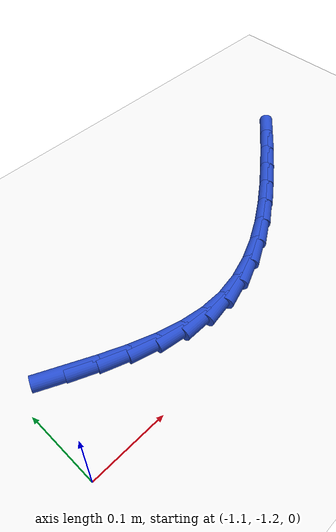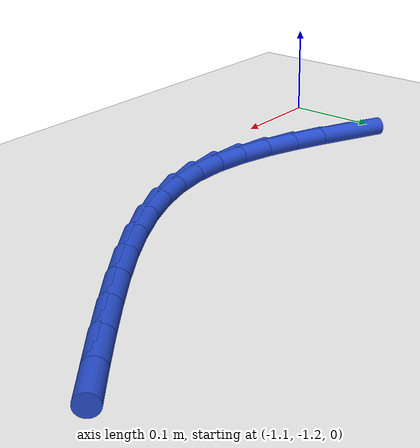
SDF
<sdf version="1.6">
 <world name="default">
  <model name="ground_plane">
   <static>1</static>
   <link name="link">
    <collision name="collision">
     <geometry><plane><normal>0 0 1</normal><size>100 100</size></plane></geometry>
     <surface><friction><ode><mu>100</mu><mu2>50</mu2></ode></friction></surface>
    </collision>
    <visual name="visual">
     <cast_shadows>0</cast_shadows>
     <geometry><plane><normal>0 0 1</normal><size>100 100</size></plane></geometry>
     <material>
      <script><uri>file://media/materials/scripts/gazebo.material</uri><name>Gazebo/WhiteGlow</name></script>
     </material>
    </visual>
   </link>
  </model>
  <model name="line">
   <link name="link_143">
    <pose>-1.0437314671801652 -1.0893300195327604 0.01 0 1.57 -0.4500691885193759</pose>
    <collision name="collision">
     <geometry><cylinder><radius>0.01</radius><length>0.08</length></cylinder></geometry>
    </collision>
    <visual name="visual">
     <material>
      <script><name>Gazebo/Blue</name><uri>file://media/materials/scripts/gazebo.material</uri></script>
     </material>
     <geometry><cylinder><radius>0.01</radius><length>0.08</length></cylinder></geometry>
    </visual>
   </link>
   <link name="link_144">
    <pose>-1.0095915316492452 -1.1058244016954004 0.01 0 1.57 -0.4147867487717466</pose>
    <collision name="collision">
     <geometry><cylinder><radius>0.01</radius><length>0.08</length></cylinder></geometry>
    </collision>
    <visual name="visual">
     <material>
      <script><name>Gazebo/Blue</name><uri>file://media/materials/scripts/gazebo.material</uri></script>
     </material>
     <geometry><cylinder><radius>0.01</radius><length>0.08</length></cylinder></geometry>
    </visual>
   </link>
   <link name="link_145">
    <pose>-0.9756408285454082 -1.1207740539563924 0.01 0 1.57 -0.35506364588897443</pose>
    <collision name="collision">
     <geometry><cylinder><radius>0.01</radius><length>0.08</length></cylinder></geometry>
    </collision>
    <visual name="visual">
     <material>
      <script><name>Gazebo/Blue</name><uri>file://media/materials/scripts/gazebo.material</uri></script>
     </material>
     <geometry><cylinder><radius>0.01</radius><length>0.08</length></cylinder></geometry>
    </visual>
   </link>
   <link name="link_146">
    <pose>-0.9418515716487137 -1.1333023510264435 0.01 0 1.57 -0.26767624566615017</pose>
    <collision name="collision">
     <geometry><cylinder><radius>0.01</radius><length>0.08</length></cylinder></geometry>
    </collision>
    <visual name="visual">
     <material>
      <script><name>Gazebo/Blue</name><uri>file://media/materials/scripts/gazebo.material</uri></script>
     </material>
     <geometry><cylinder><radius>0.01</radius><length>0.08</length></cylinder></geometry>
    </visual>
   </link>
   <link name="link_147">
    <pose>-0.9081959747392231 -1.1425326676162602 0.01 0 1.57 -0.14956769890173596</pose>
    <collision name="collision">
     <geometry><cylinder><radius>0.01</radius><length>0.08</length></cylinder></geometry>
    </collision>
    <visual name="visual">
     <material>
      <script><name>Gazebo/Blue</name><uri>file://media/materials/scripts/gazebo.material</uri></script>
     </material>
     <geometry><cylinder><radius>0.01</radius><length>0.08</length></cylinder></geometry>
    </visual>
   </link>
   <link name="link_148">
    <pose>-0.8746462515969972 -1.1475883784365495 0.01 0 1.57 -0.00017499034555581747</pose>
    <collision name="collision">
     <geometry><cylinder><radius>0.01</radius><length>0.08</length></cylinder></geometry>
    </collision>
    <visual name="visual">
     <material>
      <script><name>Gazebo/Blue</name><uri>file://media/materials/scripts/gazebo.material</uri></script>
     </material>
     <geometry><cylinder><radius>0.01</radius><length>0.08</length></cylinder></geometry>
    </visual>
   </link>
   <link name="link_149">
    <pose>-0.8411747187085692 -1.1475942356317157 0.01 0 1.57 0.16299693353481376</pose>
    <collision name="collision">
     <geometry><cylinder><radius>0.01</radius><length>0.08</length></cylinder></geometry>
    </collision>
    <visual name="visual">
     <material>
      <script><name>Gazebo/Blue</name><uri>file://media/materials/scripts/gazebo.material</uri></script>
     </material>
     <geometry><cylinder><radius>0.01</radius><length>0.08</length></cylinder></geometry>
    </visual>
   </link>
   <link name="link_150">
    <pose>-0.8077856213712263 -1.1421032001922433 0.01 0 1.57 0.3034077067660393</pose>
    <collision name="collision">
     <geometry><cylinder><radius>0.01</radius><length>0.08</length></cylinder></geometry>
    </collision>
    <visual name="visual">
     <material>
      <script><name>Gazebo/Blue</name><uri>file://media/materials/scripts/gazebo.material</uri></script>
     </material>
     <geometry><cylinder><radius>0.01</radius><length>0.08</length></cylinder></geometry>
    </visual>
   </link>
   <link name="link_151">
    <pose>-0.7745602261416399 -1.1317011931163743 0.01 0 1.57 0.4162345979605556</pose>
    <collision name="collision">
     <geometry><cylinder><radius>0.01</radius><length>0.08</length></cylinder></geometry>
    </collision>
    <visual name="visual">
     <material>
      <script><name>Gazebo/Blue</name><uri>file://media/materials/scripts/gazebo.material</uri></script>
     </material>
     <geometry><cylinder><radius>0.01</radius><length>0.08</length></cylinder></geometry>
    </visual>
   </link>
   <link name="link_152">
    <pose>-0.741591180734068 -1.1171267722291456 0.01 0 1.57 0.5044246599722264</pose>
    <collision name="collision">
     <geometry><cylinder><radius>0.01</radius><length>0.08</length></cylinder></geometry>
    </collision>
    <visual name="visual">
     <material>
      <script><name>Gazebo/Blue</name><uri>file://media/materials/scripts/gazebo.material</uri></script>
     </material>
     <geometry><cylinder><radius>0.01</radius><length>0.08</length></cylinder></geometry>
    </visual>
   </link>
   <link name="link_153">
    <pose>-0.7089711328627667 -1.0991184953555937 0.01 0 1.57 0.5717212980597471</pose>
    <collision name="collision">
     <geometry><cylinder><radius>0.01</radius><length>0.08</length></cylinder></geometry>
    </collision>
    <visual name="visual">
     <material>
      <script><name>Gazebo/Blue</name><uri>file://media/materials/scripts/gazebo.material</uri></script>
     </material>
     <geometry><cylinder><radius>0.01</radius><length>0.08</length></cylinder></geometry>
    </visual>
   </link>
   <link name="link_154">
    <pose>-0.6767927302419945 -1.0784149203207554 0.01 0 1.57 0.6214491476171118</pose>
    <collision name="collision">
     <geometry><cylinder><radius>0.01</radius><length>0.08</length></cylinder></geometry>
    </collision>
    <visual name="visual">
     <material>
      <script><name>Gazebo/Blue</name><uri>file://media/materials/scripts/gazebo.material</uri></script>
     </material>
     <geometry><cylinder><radius>0.01</radius><length>0.08</length></cylinder></geometry>
    </visual>
   </link>
   <link name="link_155">
    <pose>-0.6451486205860082 -1.0557546049496673 0.01 0 1.57 0.6560831332819782</pose>
    <collision name="collision">
     <geometry><cylinder><radius>0.01</radius><length>0.08</length></cylinder></geometry>
    </collision>
    <visual name="visual">
     <material>
      <script><name>Gazebo/Blue</name><uri>file://media/materials/scripts/gazebo.material</uri></script>
     </material>
     <geometry><cylinder><radius>0.01</radius><length>0.08</length></cylinder></geometry>
    </visual>
   </link>
   <link name="link_156">
    <pose>-0.6141314516090658 -1.0318761070673663 0.01 0 1.57 0.6773886422893551</pose>
    <collision name="collision">
     <geometry><cylinder><radius>0.01</radius><length>0.08</length></cylinder></geometry>
    </collision>
    <visual name="visual">
     <material>
      <script><name>Gazebo/Blue</name><uri>file://media/materials/scripts/gazebo.material</uri></script>
     </material>
     <geometry><cylinder><radius>0.01</radius><length>0.08</length></cylinder></geometry>
    </visual>
   </link>
   <link name="link_157">
    <pose>-0.5838319137436297 -1.0075046296887133 0.01 0 1.57 0.6922249080107392</pose>
    <collision name="collision">
     <geometry><cylinder><radius>0.01</radius><length>0.08</length></cylinder></geometry>
    </collision>
    <visual name="visual">
     <material>
      <script><name>Gazebo/Blue</name><uri>file://media/materials/scripts/gazebo.material</uri></script>
     </material>
     <geometry><cylinder><radius>0.01</radius><length>0.08</length></cylinder></geometry>
    </visual>
   </link>
   <link name="link_158">
    <pose>-0.5542887416516084 -0.9830108742666152 0.01 0 1.57 0.7074041990487953</pose>
    <collision name="collision">
     <geometry><cylinder><radius>0.01</radius><length>0.08</length></cylinder></geometry>
    </collision>
    <visual name="visual">
     <material>
      <script><name>Gazebo/Blue</name><uri>file://media/materials/scripts/gazebo.material</uri></script>
     </material>
     <geometry><cylinder><radius>0.01</radius><length>0.08</length></cylinder></geometry>
    </visual>
   </link>
  </model>
 </world>
</sdf>
